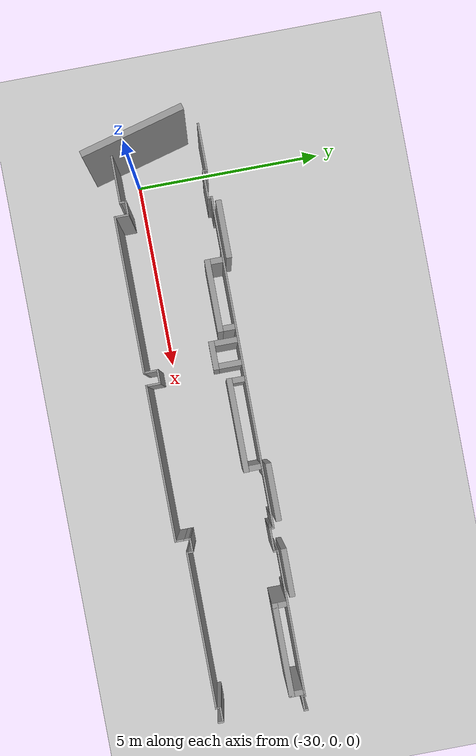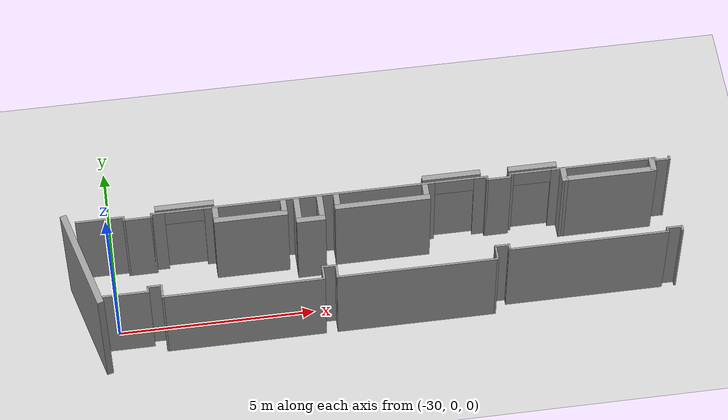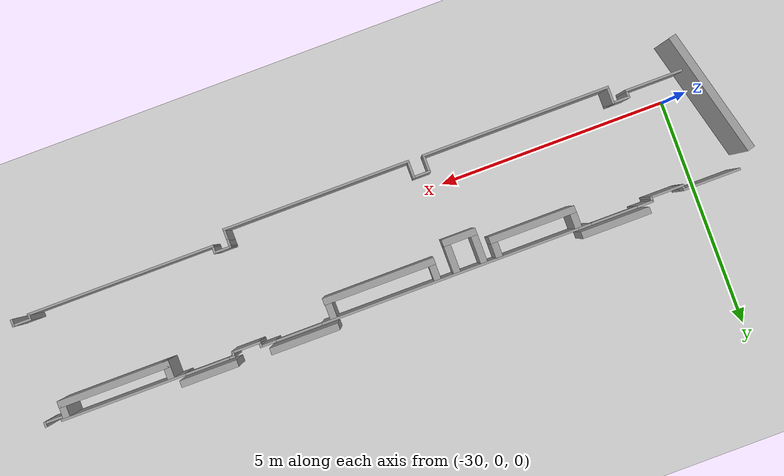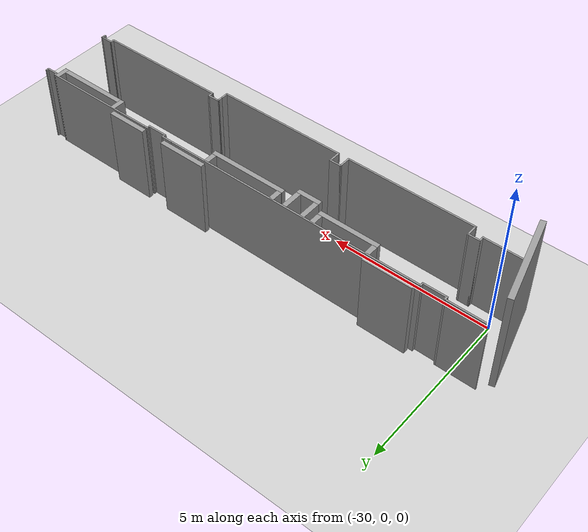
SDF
<sdf version="1.7">
 <world name="default">
  <model name="ground_plane">
   <static>1</static>
   <link name="link">
    <collision name="collision">
     <geometry><plane><normal>0 0 1</normal><size>100 100</size></plane></geometry>
     <surface><friction><ode><mu>100</mu><mu2>50</mu2></ode></friction></surface>
    </collision>
    <visual name="visual">
     <cast_shadows>0</cast_shadows>
     <geometry><plane><normal>0 0 1</normal><size>100 100</size></plane></geometry>
     <material>
      <script><uri>file://media/materials/scripts/gazebo.material</uri><name>Gazebo/Grey</name></script>
     </material>
    </visual>
   </link>
  </model>
  <model name="bot_world.world">
   <pose>-14.544 2.59256 0 0 -0 0</pose>
   <link name="Wall_122">
    <collision name="Wall_122_Collision">
     <geometry><box><size>0.159317 0.05 2.5</size></box></geometry>
     <pose>0 0 1.25 0 -0 0</pose>
    </collision>
    <visual name="Wall_122_Visual">
     <pose>0 0 1.25 0 -0 0</pose>
     <geometry><box><size>0.159317 0.05 2.5</size></box></geometry>
     <material>
      <script><uri>file://media/materials/scripts/gazebo.material</uri><name>Gazebo/Grey</name></script>
      <ambient>1 1 1 1</ambient>
     </material>
     <meta><layer>0</layer></meta>
    </visual>
    <pose>-1.14097 -2.9715 0 0 -0 1.57635</pose>
   </link>
   <link name="Wall_123">
    <collision name="Wall_123_Collision">
     <geometry><box><size>0.42 0.05 2.5</size></box></geometry>
     <pose>0 0 1.25 0 -0 0</pose>
    </collision>
    <visual name="Wall_123_Visual">
     <pose>0 0 1.25 0 -0 0</pose>
     <geometry><box><size>0.42 0.05 2.5</size></box></geometry>
     <material>
      <script><uri>file://media/materials/scripts/gazebo.material</uri><name>Gazebo/Grey</name></script>
      <ambient>1 1 1 1</ambient>
     </material>
     <meta><layer>0</layer></meta>
    </visual>
    <pose>-1.32567 -2.91717 0 0 -0 3.14159</pose>
   </link>
   <link name="Wall_124">
    <collision name="Wall_124_Collision">
     <geometry><box><size>0.15685 0.05 2.5</size></box></geometry>
     <pose>0 0 1.25 0 -0 0</pose>
    </collision>
    <visual name="Wall_124_Visual">
     <pose>0 0 1.25 0 -0 0</pose>
     <geometry><box><size>0.15685 0.05 2.5</size></box></geometry>
     <material>
      <script><uri>file://media/materials/scripts/gazebo.material</uri><name>Gazebo/Grey</name></script>
      <ambient>1 1 1 1</ambient>
     </material>
     <meta><layer>0</layer></meta>
    </visual>
    <pose>-1.51097 -2.97059 0 0 -0 -1.56515</pose>
   </link>
   <link name="Wall_125">
    <collision name="Wall_125_Collision">
     <geometry><box><size>4.08 0.05 2.5</size></box></geometry>
     <pose>0 0 1.25 0 -0 0</pose>
    </collision>
    <visual name="Wall_125_Visual">
     <pose>0 0 1.25 0 -0 0</pose>
     <geometry><box><size>4.08 0.05 2.5</size></box></geometry>
     <material>
      <script><uri>file://media/materials/scripts/gazebo.material</uri><name>Gazebo/Grey</name></script>
      <ambient>1 1 1 1</ambient>
     </material>
     <meta><layer>0</layer></meta>
    </visual>
    <pose>-3.52567 -3.02493 0 0 -0 3.14159</pose>
   </link>
   <link name="Wall_127">
    <collision name="Wall_127_Collision">
     <geometry><box><size>0.189791 0.05 2.5</size></box></geometry>
     <pose>0 0 1.25 0 -0 0</pose>
    </collision>
    <visual name="Wall_127_Visual">
     <pose>0 0 1.25 0 -0 0</pose>
     <geometry><box><size>0.189791 0.05 2.5</size></box></geometry>
     <material>
      <script><uri>file://media/materials/scripts/gazebo.material</uri><name>Gazebo/Grey</name></script>
      <ambient>1 1 1 1</ambient>
     </material>
     <meta><layer>0</layer></meta>
    </visual>
    <pose>-5.54044 -2.95432 0 0 -0 1.56758</pose>
   </link>
   <link name="Wall_128">
    <collision name="Wall_128_Collision">
     <geometry><box><size>0.39 0.05 2.5</size></box></geometry>
     <pose>0 0 1.25 0 -0 0</pose>
    </collision>
    <visual name="Wall_128_Visual">
     <pose>0 0 1.25 0 -0 0</pose>
     <geometry><box><size>0.39 0.05 2.5</size></box></geometry>
     <material>
      <script><uri>file://media/materials/scripts/gazebo.material</uri><name>Gazebo/Grey</name></script>
      <ambient>1 1 1 1</ambient>
     </material>
     <meta><layer>0</layer></meta>
    </visual>
    <pose>-5.71022 -2.88462 0 0 -0 3.14159</pose>
   </link>
   <link name="Wall_129">
    <collision name="Wall_129_Collision">
     <geometry><box><size>0.188127 0.05 2.5</size></box></geometry>
     <pose>0 0 1.25 0 -0 0</pose>
    </collision>
    <visual name="Wall_129_Visual">
     <pose>0 0 1.25 0 -0 0</pose>
     <geometry><box><size>0.188127 0.05 2.5</size></box></geometry>
     <material>
      <script><uri>file://media/materials/scripts/gazebo.material</uri><name>Gazebo/Grey</name></script>
      <ambient>1 1 1 1</ambient>
     </material>
     <meta><layer>0</layer></meta>
    </visual>
    <pose>-5.88004 -2.95398 0 0 -0 -1.56823</pose>
   </link>
   <link name="Wall_130">
    <collision name="Wall_130_Collision">
     <geometry><box><size>0.29 0.05 2.5</size></box></geometry>
     <pose>0 0 1.25 0 -0 0</pose>
    </collision>
    <visual name="Wall_130_Visual">
     <pose>0 0 1.25 0 -0 0</pose>
     <geometry><box><size>0.29 0.05 2.5</size></box></geometry>
     <material>
      <script><uri>file://media/materials/scripts/gazebo.material</uri><name>Gazebo/Grey</name></script>
      <ambient>1 1 1 1</ambient>
     </material>
     <meta><layer>0</layer></meta>
    </visual>
    <pose>-5.87986 -3.14334 0 0 -0 -1.5708</pose>
   </link>
   <link name="Wall_131">
    <collision name="Wall_131_Collision">
     <geometry><box><size>4.03 0 2.5</size></box></geometry>
     <pose>0 0 1.25 0 -0 0</pose>
    </collision>
    <visual name="Wall_131_Visual">
     <pose>0 0 1.25 0 -0 0</pose>
     <geometry><box><size>4.03 0 2.5</size></box></geometry>
     <material>
      <script><uri>file://media/materials/scripts/gazebo.material</uri><name>Gazebo/Grey</name></script>
      <ambient>1 1 1 1</ambient>
     </material>
     <meta><layer>0</layer></meta>
    </visual>
    <pose>-7.89476 -3.26309 0 0 -0 3.14147</pose>
   </link>
   <link name="Wall_133">
    <collision name="Wall_133_Collision">
     <geometry><box><size>4.08 0.05 2.5</size></box></geometry>
     <pose>0 0 1.25 0 -0 0</pose>
    </collision>
    <visual name="Wall_133_Visual">
     <pose>0 0 1.25 0 -0 0</pose>
     <geometry><box><size>4.08 0.05 2.5</size></box></geometry>
     <material>
      <script><uri>file://media/materials/scripts/gazebo.material</uri><name>Gazebo/Grey</name></script>
      <ambient>1 1 1 1</ambient>
     </material>
     <meta><layer>0</layer></meta>
    </visual>
    <pose>-7.89476 -3.26309 0 0 -0 3.14147</pose>
   </link>
   <link name="Wall_135">
    <collision name="Wall_135_Collision">
     <geometry><box><size>0.399503 0.05 2.5</size></box></geometry>
     <pose>0 0 1.25 0 -0 0</pose>
    </collision>
    <visual name="Wall_135_Visual">
     <pose>0 0 1.25 0 -0 0</pose>
     <geometry><box><size>0.399503 0.05 2.5</size></box></geometry>
     <material>
      <script><uri>file://media/materials/scripts/gazebo.material</uri><name>Gazebo/Grey</name></script>
      <ambient>1 1 1 1</ambient>
     </material>
     <meta><layer>0</layer></meta>
    </visual>
    <pose>-9.90967 -3.08784 0 0 -0 1.5708</pose>
   </link>
   <link name="Wall_136">
    <collision name="Wall_136_Collision">
     <geometry><box><size>0.39 0.05 2.5</size></box></geometry>
     <pose>0 0 1.25 0 -0 0</pose>
    </collision>
    <visual name="Wall_136_Visual">
     <pose>0 0 1.25 0 -0 0</pose>
     <geometry><box><size>0.39 0.05 2.5</size></box></geometry>
     <material>
      <script><uri>file://media/materials/scripts/gazebo.material</uri><name>Gazebo/Grey</name></script>
      <ambient>1 1 1 1</ambient>
     </material>
     <meta><layer>0</layer></meta>
    </visual>
    <pose>-10.0797 -2.91284 0 0 -0 3.14159</pose>
   </link>
   <link name="Wall_137">
    <collision name="Wall_137_Collision">
     <geometry><box><size>0.4 0.05 2.5</size></box></geometry>
     <pose>0 0 1.25 0 -0 0</pose>
    </collision>
    <visual name="Wall_137_Visual">
     <pose>0 0 1.25 0 -0 0</pose>
     <geometry><box><size>0.4 0.05 2.5</size></box></geometry>
     <material>
      <script><uri>file://media/materials/scripts/gazebo.material</uri><name>Gazebo/Grey</name></script>
      <ambient>1 1 1 1</ambient>
     </material>
     <meta><layer>0</layer></meta>
    </visual>
    <pose>-10.2497 -3.08784 0 0 -0 -1.5708</pose>
   </link>
   <link name="Wall_138">
    <collision name="Wall_138_Collision">
     <geometry><box><size>4.08 0.05 2.5</size></box></geometry>
     <pose>0 0 1.25 0 -0 0</pose>
    </collision>
    <visual name="Wall_138_Visual">
     <pose>0 0 1.25 0 -0 0</pose>
     <geometry><box><size>4.08 0.05 2.5</size></box></geometry>
     <material>
      <script><uri>file://media/materials/scripts/gazebo.material</uri><name>Gazebo/Grey</name></script>
      <ambient>1 1 1 1</ambient>
     </material>
     <meta><layer>0</layer></meta>
    </visual>
    <pose>-12.2647 -3.26284 0 0 -0 3.14159</pose>
   </link>
   <link name="Wall_140">
    <collision name="Wall_140_Collision">
     <geometry><box><size>0.39 0.05 2.5</size></box></geometry>
     <pose>0 0 1.25 0 -0 0</pose>
    </collision>
    <visual name="Wall_140_Visual">
     <pose>0 0 1.25 0 -0 0</pose>
     <geometry><box><size>0.39 0.05 2.5</size></box></geometry>
     <material>
      <script><uri>file://media/materials/scripts/gazebo.material</uri><name>Gazebo/Grey</name></script>
      <ambient>1 1 1 1</ambient>
     </material>
     <meta><layer>0</layer></meta>
    </visual>
    <pose>-14.2797 -3.09284 0 0 -0 1.5708</pose>
   </link>
   <link name="Wall_141">
    <collision name="Wall_141_Collision">
     <geometry><box><size>0.39 0.05 2.5</size></box></geometry>
     <pose>0 0 1.25 0 -0 0</pose>
    </collision>
    <visual name="Wall_141_Visual">
     <pose>0 0 1.25 0 -0 0</pose>
     <geometry><box><size>0.39 0.05 2.5</size></box></geometry>
     <material>
      <script><uri>file://media/materials/scripts/gazebo.material</uri><name>Gazebo/Grey</name></script>
      <ambient>1 1 1 1</ambient>
     </material>
     <meta><layer>0</layer></meta>
    </visual>
    <pose>-14.4497 -2.92284 0 0 -0 3.14159</pose>
   </link>
   <link name="Wall_143">
    <collision name="Wall_143_Collision">
     <geometry><box><size>0.19 0.05 2.5</size></box></geometry>
     <pose>0 0 1.25 0 -0 0</pose>
    </collision>
    <visual name="Wall_143_Visual">
     <pose>0 0 1.25 0 -0 0</pose>
     <geometry><box><size>0.19 0.05 2.5</size></box></geometry>
     <material>
      <script><uri>file://media/materials/scripts/gazebo.material</uri><name>Gazebo/Grey</name></script>
      <ambient>1 1 1 1</ambient>
     </material>
     <meta><layer>0</layer></meta>
    </visual>
    <pose>-14.6197 -2.99284 0 0 -0 -1.5708</pose>
   </link>
   <link name="Wall_144">
    <collision name="Wall_144_Collision">
     <geometry><box><size>1.25 0.05 2.5</size></box></geometry>
     <pose>0 0 1.25 0 -0 0</pose>
    </collision>
    <visual name="Wall_144_Visual">
     <pose>0 0 1.25 0 -0 0</pose>
     <geometry><box><size>1.25 0.05 2.5</size></box></geometry>
     <material>
      <script><uri>file://media/materials/scripts/gazebo.material</uri><name>Gazebo/Grey</name></script>
      <ambient>1 1 1 1</ambient>
     </material>
     <meta><layer>0</layer></meta>
    </visual>
    <pose>-15.2197 -3.06284 0 0 -0 3.14159</pose>
   </link>
   <link name="Wall_146">
    <collision name="Wall_146_Collision">
     <geometry><box><size>0.42 0.15 2.5</size></box></geometry>
     <pose>0 0 1.25 0 -0 0</pose>
    </collision>
    <visual name="Wall_146_Visual">
     <pose>0 0 1.25 0 -0 0</pose>
     <geometry><box><size>0.42 0.15 2.5</size></box></geometry>
     <material>
      <script><uri>file://media/materials/scripts/gazebo.material</uri><name>Gazebo/Grey</name></script>
      <ambient>1 1 1 1</ambient>
     </material>
     <meta><layer>0</layer></meta>
    </visual>
    <pose>-3.80107 -0.936792 0 0 -0 -1.5708</pose>
   </link>
   <link name="Wall_147">
    <collision name="Wall_147_Collision">
     <geometry><box><size>2.44162 0.15 2.5</size></box></geometry>
     <pose>0 0 1.25 0 -0 0</pose>
    </collision>
    <visual name="Wall_147_Visual">
     <pose>0 0 1.25 0 -0 0</pose>
     <geometry><box><size>2.44162 0.15 2.5</size></box></geometry>
     <material>
      <script><uri>file://media/materials/scripts/gazebo.material</uri><name>Gazebo/Grey</name></script>
      <ambient>1 1 1 1</ambient>
     </material>
     <meta><layer>0</layer></meta>
    </visual>
    <pose>-2.65422 -1.07154 0 0 -0 0.000218</pose>
   </link>
   <link name="Wall_148">
    <collision name="Wall_148_Collision">
     <geometry><box><size>0.42 0.15 2.5</size></box></geometry>
     <pose>0 0 1.25 0 -0 0</pose>
    </collision>
    <visual name="Wall_148_Visual">
     <pose>0 0 1.25 0 -0 0</pose>
     <geometry><box><size>0.42 0.15 2.5</size></box></geometry>
     <material>
      <script><uri>file://media/materials/scripts/gazebo.material</uri><name>Gazebo/Grey</name></script>
      <ambient>1 1 1 1</ambient>
     </material>
     <meta><layer>0</layer></meta>
    </visual>
    <pose>-1.51023 -0.934476 0 0 -0 1.5708</pose>
   </link>
   <link name="Wall_153">
    <collision name="Wall_153_Collision">
     <geometry><box><size>2.44 0.15 2.5</size></box></geometry>
     <pose>0 0 1.25 0 -0 0</pose>
    </collision>
    <visual name="Wall_153_Visual">
     <pose>0 0 1.25 0 -0 0</pose>
     <geometry><box><size>2.44 0.15 2.5</size></box></geometry>
     <material>
      <script><uri>file://media/materials/scripts/gazebo.material</uri><name>Gazebo/Grey</name></script>
      <ambient>1 1 1 1</ambient>
     </material>
     <meta><layer>0</layer></meta>
    </visual>
    <pose>-8.49434 -1.15782 0 0 -0 0</pose>
   </link>
   <link name="Wall_155">
    <collision name="Wall_155_Collision">
     <geometry><box><size>1.88 0.15 2.5</size></box></geometry>
     <pose>0 0 1.25 0 -0 0</pose>
    </collision>
    <visual name="Wall_155_Visual">
     <pose>0 0 1.25 0 -0 0</pose>
     <geometry><box><size>1.88 0.15 2.5</size></box></geometry>
     <material>
      <script><uri>file://media/materials/scripts/gazebo.material</uri><name>Gazebo/Grey</name></script>
      <ambient>1 1 1 1</ambient>
     </material>
     <meta><layer>0</layer></meta>
    </visual>
    <pose>-11.852 -1.1527 0 0 -0 0</pose>
   </link>
   <link name="Wall_157">
    <collision name="Wall_157_Collision">
     <geometry><box><size>0.74 0.15 2.5</size></box></geometry>
     <pose>0 0 1.25 0 -0 0</pose>
    </collision>
    <visual name="Wall_157_Visual">
     <pose>0 0 1.25 0 -0 0</pose>
     <geometry><box><size>0.74 0.15 2.5</size></box></geometry>
     <material>
      <script><uri>file://media/materials/scripts/gazebo.material</uri><name>Gazebo/Grey</name></script>
      <ambient>1 1 1 1</ambient>
     </material>
     <meta><layer>0</layer></meta>
    </visual>
    <pose>-10.3561 -1.43327 0 0 -0 0</pose>
   </link>
   <link name="Wall_159">
    <collision name="Wall_159_Collision">
     <geometry><box><size>0.6 0.15 2.5</size></box></geometry>
     <pose>0 0 1.25 0 -0 0</pose>
    </collision>
    <visual name="Wall_159_Visual">
     <pose>0 0 1.25 0 -0 0</pose>
     <geometry><box><size>0.6 0.15 2.5</size></box></geometry>
     <material>
      <script><uri>file://media/materials/scripts/gazebo.material</uri><name>Gazebo/Grey</name></script>
      <ambient>1 1 1 1</ambient>
     </material>
     <meta><layer>0</layer></meta>
    </visual>
    <pose>-10.6528 -1.06038 0 0 -0 -1.5708</pose>
   </link>
   <link name="Wall_161">
    <collision name="Wall_161_Collision">
     <geometry><box><size>0.34 0.15 2.5</size></box></geometry>
     <pose>0 0 1.25 0 -0 0</pose>
    </collision>
    <visual name="Wall_161_Visual">
     <pose>0 0 1.25 0 -0 0</pose>
     <geometry><box><size>0.34 0.15 2.5</size></box></geometry>
     <material>
      <script><uri>file://media/materials/scripts/gazebo.material</uri><name>Gazebo/Grey</name></script>
      <ambient>1 1 1 1</ambient>
     </material>
     <meta><layer>0</layer></meta>
    </visual>
    <pose>-12.7201 -0.915227 0 0 -0 -1.5708</pose>
   </link>
   <link name="Wall_163">
    <collision name="Wall_163_Collision">
     <geometry><box><size>0.34 0.15 2.5</size></box></geometry>
     <pose>0 0 1.25 0 -0 0</pose>
    </collision>
    <visual name="Wall_163_Visual">
     <pose>0 0 1.25 0 -0 0</pose>
     <geometry><box><size>0.34 0.15 2.5</size></box></geometry>
     <material>
      <script><uri>file://media/materials/scripts/gazebo.material</uri><name>Gazebo/Grey</name></script>
      <ambient>1 1 1 1</ambient>
     </material>
     <meta><layer>0</layer></meta>
    </visual>
    <pose>-7.36079 -0.926538 0 0 -0 -1.5708</pose>
   </link>
   <link name="Wall_165">
    <collision name="Wall_165_Collision">
     <geometry><box><size>0.6 0.15 2.5</size></box></geometry>
     <pose>0 0 1.25 0 -0 0</pose>
    </collision>
    <visual name="Wall_165_Visual">
     <pose>0 0 1.25 0 -0 0</pose>
     <geometry><box><size>0.6 0.15 2.5</size></box></geometry>
     <material>
      <script><uri>file://media/materials/scripts/gazebo.material</uri><name>Gazebo/Grey</name></script>
      <ambient>1 1 1 1</ambient>
     </material>
     <meta><layer>0</layer></meta>
    </visual>
    <pose>-10.0621 -1.06367 0 0 -0 -1.5708</pose>
   </link>
   <link name="Wall_167">
    <collision name="Wall_167_Collision">
     <geometry><box><size>0.34 0.15 2.5</size></box></geometry>
     <pose>0 0 1.25 0 -0 0</pose>
    </collision>
    <visual name="Wall_167_Visual">
     <pose>0 0 1.25 0 -0 0</pose>
     <geometry><box><size>0.34 0.15 2.5</size></box></geometry>
     <material>
      <script><uri>file://media/materials/scripts/gazebo.material</uri><name>Gazebo/Grey</name></script>
      <ambient>1 1 1 1</ambient>
     </material>
     <meta><layer>0</layer></meta>
    </visual>
    <pose>-10.9881 -0.924091 0 0 -0 -1.5708</pose>
   </link>
   <link name="Wall_169">
    <collision name="Wall_169_Collision">
     <geometry><box><size>0.34 0.15 2.5</size></box></geometry>
     <pose>0 0 1.25 0 -0 0</pose>
    </collision>
    <visual name="Wall_169_Visual">
     <pose>0 0 1.25 0 -0 0</pose>
     <geometry><box><size>0.34 0.15 2.5</size></box></geometry>
     <material>
      <script><uri>file://media/materials/scripts/gazebo.material</uri><name>Gazebo/Grey</name></script>
      <ambient>1 1 1 1</ambient>
     </material>
     <meta><layer>0</layer></meta>
    </visual>
    <pose>-9.63479 -0.920496 0 0 -0 -1.5708</pose>
   </link>
   <link name="Wall_52">
    <collision name="Wall_52_Collision">
     <geometry><box><size>0.118067 0.05 2.5</size></box></geometry>
     <pose>0 0 1.25 0 -0 0</pose>
    </collision>
    <visual name="Wall_52_Visual">
     <pose>0 0 1.25 0 -0 0</pose>
     <geometry><box><size>0.118067 0.05 2.5</size></box></geometry>
     <material>
      <script><uri>file://media/materials/scripts/gazebo.material</uri><name>Gazebo/Grey</name></script>
      <ambient>1 1 1 1</ambient>
     </material>
     <meta><layer>0</layer></meta>
    </visual>
    <pose>-1.05236 -0.780541 0 0 -0 -1.56348</pose>
   </link>
   <link name="Wall_53">
    <collision name="Wall_53_Collision">
     <geometry><box><size>0.409 0.05 2.5</size></box></geometry>
     <pose>0 0 1.25 0 -0 0</pose>
    </collision>
    <visual name="Wall_53_Visual">
     <pose>0 0 1.25 0 -0 0</pose>
     <geometry><box><size>0.409 0.05 2.5</size></box></geometry>
     <material>
      <script><uri>file://media/materials/scripts/gazebo.material</uri><name>Gazebo/Grey</name></script>
      <ambient>1 1 1 1</ambient>
     </material>
     <meta><layer>0</layer></meta>
    </visual>
    <pose>-1.23162 -0.814348 0 0 -0 3.14159</pose>
   </link>
   <link name="Wall_54">
    <collision name="Wall_54_Collision">
     <geometry><box><size>0.12 0.05 2.5</size></box></geometry>
     <pose>0 0 1.25 0 -0 0</pose>
    </collision>
    <visual name="Wall_54_Visual">
     <pose>0 0 1.25 0 -0 0</pose>
     <geometry><box><size>0.12 0.05 2.5</size></box></geometry>
     <material>
      <script><uri>file://media/materials/scripts/gazebo.material</uri><name>Gazebo/Grey</name></script>
      <ambient>1 1 1 1</ambient>
     </material>
     <meta><layer>0</layer></meta>
    </visual>
    <pose>-1.41112 -0.779348 0 0 -0 1.5708</pose>
   </link>
   <link name="Wall_55">
    <pose>-3.29089 -0.744595 0 0 -0 -3.14146</pose>
    <visual name="Wall_55_Visual_0">
     <pose>-0.544894 0 1.25 0 -0 0</pose>
     <geometry><box><size>2.72021 0.05 2.5</size></box></geometry>
     <material>
      <script><uri>file://media/materials/scripts/gazebo.material</uri><name>Gazebo/Grey</name></script>
      <ambient>1 1 1 1</ambient>
     </material>
     <meta><layer>0</layer></meta>
    </visual>
    <collision name="Wall_55_Collision_0">
     <geometry><box><size>2.72021 0.05 2.5</size></box></geometry>
     <pose>-0.544894 0 1.25 0 -0 0</pose>
    </collision>
    <visual name="Wall_55_Visual_1">
     <pose>1.84011 0 1.25 0 -0 0</pose>
     <geometry><box><size>0.129787 0.05 2.5</size></box></geometry>
     <material>
      <script><uri>file://media/materials/scripts/gazebo.material</uri><name>Gazebo/Grey</name></script>
      <ambient>1 1 1 1</ambient>
     </material>
     <meta><layer>0</layer></meta>
    </visual>
    <collision name="Wall_55_Collision_1">
     <geometry><box><size>0.129787 0.05 2.5</size></box></geometry>
     <pose>1.84011 0 1.25 0 -0 0</pose>
    </collision>
    <visual name="Wall_55_Visual_2">
     <pose>1.29521 0 2.25 0 -0 0</pose>
     <geometry><box><size>0.96 0.05 0.5</size></box></geometry>
     <material>
      <script><uri>file://media/materials/scripts/gazebo.material</uri><name>Gazebo/Grey</name></script>
      <ambient>1 1 1 1</ambient>
     </material>
     <meta><layer>0</layer></meta>
    </visual>
    <collision name="Wall_55_Collision_2">
     <geometry><box><size>0.96 0.05 0.5</size></box></geometry>
     <pose>1.29521 0 2.25 0 -0 0</pose>
    </collision>
   </link>
   <link name="Wall_57">
    <collision name="Wall_57_Collision">
     <geometry><box><size>0.14 0.05 2.5</size></box></geometry>
     <pose>0 0 1.25 0 -0 0</pose>
    </collision>
    <visual name="Wall_57_Visual">
     <pose>0 0 1.25 0 -0 0</pose>
     <geometry><box><size>0.14 0.05 2.5</size></box></geometry>
     <material>
      <script><uri>file://media/materials/scripts/gazebo.material</uri><name>Gazebo/Grey</name></script>
      <ambient>1 1 1 1</ambient>
     </material>
     <meta><layer>0</layer></meta>
    </visual>
    <pose>-5.17067 -0.789841 0 0 -0 -1.5708</pose>
   </link>
   <link name="Wall_58">
    <collision name="Wall_58_Collision">
     <geometry><box><size>0.64 0.05 2.5</size></box></geometry>
     <pose>0 0 1.25 0 -0 0</pose>
    </collision>
    <visual name="Wall_58_Visual">
     <pose>0 0 1.25 0 -0 0</pose>
     <geometry><box><size>0.64 0.05 2.5</size></box></geometry>
     <material>
      <script><uri>file://media/materials/scripts/gazebo.material</uri><name>Gazebo/Grey</name></script>
      <ambient>1 1 1 1</ambient>
     </material>
     <meta><layer>0</layer></meta>
    </visual>
    <pose>-5.46567 -0.834841 0 0 -0 3.14159</pose>
   </link>
   <link name="Wall_59">
    <collision name="Wall_59_Collision">
     <geometry><box><size>0.14 0.05 2.5</size></box></geometry>
     <pose>0 0 1.25 0 -0 0</pose>
    </collision>
    <visual name="Wall_59_Visual">
     <pose>0 0 1.25 0 -0 0</pose>
     <geometry><box><size>0.14 0.05 2.5</size></box></geometry>
     <material>
      <script><uri>file://media/materials/scripts/gazebo.material</uri><name>Gazebo/Grey</name></script>
      <ambient>1 1 1 1</ambient>
     </material>
     <meta><layer>0</layer></meta>
    </visual>
    <pose>-5.76067 -0.789841 0 0 -0 1.5708</pose>
   </link>
   <link name="Wall_60">
    <pose>-10.0457 -0.744841 0 0 -0 3.14159</pose>
    <visual name="Wall_60_Visual_0">
     <pose>-4.13046 0 1.25 0 -0 0</pose>
     <geometry><box><size>0.359084 0.05 2.5</size></box></geometry>
     <material>
      <script><uri>file://media/materials/scripts/gazebo.material</uri><name>Gazebo/Grey</name></script>
      <ambient>1 1 1 1</ambient>
     </material>
     <meta><layer>0</layer></meta>
    </visual>
    <collision name="Wall_60_Collision_0">
     <geometry><box><size>0.359084 0.05 2.5</size></box></geometry>
     <pose>-4.13046 0 1.25 0 -0 0</pose>
    </collision>
    <visual name="Wall_60_Visual_1">
     <pose>0.000135 0 1.25 0 -0 0</pose>
     <geometry><box><size>5.9021 0.05 2.5</size></box></geometry>
     <material>
      <script><uri>file://media/materials/scripts/gazebo.material</uri><name>Gazebo/Grey</name></script>
      <ambient>1 1 1 1</ambient>
     </material>
     <meta><layer>0</layer></meta>
    </visual>
    <collision name="Wall_60_Collision_1">
     <geometry><box><size>5.9021 0.05 2.5</size></box></geometry>
     <pose>0.000135 0 1.25 0 -0 0</pose>
    </collision>
    <visual name="Wall_60_Visual_2">
     <pose>4.13059 0 1.25 0 -0 0</pose>
     <geometry><box><size>0.358813 0.05 2.5</size></box></geometry>
     <material>
      <script><uri>file://media/materials/scripts/gazebo.material</uri><name>Gazebo/Grey</name></script>
      <ambient>1 1 1 1</ambient>
     </material>
     <meta><layer>0</layer></meta>
    </visual>
    <collision name="Wall_60_Collision_2">
     <geometry><box><size>0.358813 0.05 2.5</size></box></geometry>
     <pose>4.13059 0 1.25 0 -0 0</pose>
    </collision>
    <visual name="Wall_60_Visual_3">
     <pose>-3.45092 0 2.25 0 -0 0</pose>
     <geometry><box><size>1 0.05 0.5</size></box></geometry>
     <material>
      <script><uri>file://media/materials/scripts/gazebo.material</uri><name>Gazebo/Grey</name></script>
      <ambient>1 1 1 1</ambient>
     </material>
     <meta><layer>0</layer></meta>
    </visual>
    <collision name="Wall_60_Collision_3">
     <geometry><box><size>1 0.05 0.5</size></box></geometry>
     <pose>-3.45092 0 2.25 0 -0 0</pose>
    </collision>
    <visual name="Wall_60_Visual_4">
     <pose>3.45119 0 2.25 0 -0 0</pose>
     <geometry><box><size>1 0.05 0.5</size></box></geometry>
     <material>
      <script><uri>file://media/materials/scripts/gazebo.material</uri><name>Gazebo/Grey</name></script>
      <ambient>1 1 1 1</ambient>
     </material>
     <meta><layer>0</layer></meta>
    </visual>
    <collision name="Wall_60_Collision_4">
     <geometry><box><size>1 0.05 0.5</size></box></geometry>
     <pose>3.45119 0 2.25 0 -0 0</pose>
    </collision>
   </link>
   <link name="Wall_64">
    <collision name="Wall_64_Collision">
     <geometry><box><size>1.25 0.15 2.5</size></box></geometry>
     <pose>0 0 1.25 0 -0 0</pose>
    </collision>
    <visual name="Wall_64_Visual">
     <pose>0 0 1.25 0 -0 0</pose>
     <geometry><box><size>1.25 0.15 2.5</size></box></geometry>
     <material>
      <script><uri>file://media/materials/scripts/gazebo.material</uri><name>Gazebo/Grey</name></script>
      <ambient>1 1 1 1</ambient>
     </material>
     <meta><layer>0</layer></meta>
    </visual>
    <pose>-4.56894 -0.591819 0 0 -0 0</pose>
   </link>
   <link name="Wall_66">
    <collision name="Wall_66_Collision">
     <geometry><box><size>0.14 0.05 2.5</size></box></geometry>
     <pose>0 0 1.25 0 -0 0</pose>
    </collision>
    <visual name="Wall_66_Visual">
     <pose>0 0 1.25 0 -0 0</pose>
     <geometry><box><size>0.14 0.05 2.5</size></box></geometry>
     <material>
      <script><uri>file://media/materials/scripts/gazebo.material</uri><name>Gazebo/Grey</name></script>
      <ambient>1 1 1 1</ambient>
     </material>
     <meta><layer>0</layer></meta>
    </visual>
    <pose>-14.3307 -0.789841 0 0 -0 -1.5708</pose>
   </link>
   <link name="Wall_67">
    <collision name="Wall_67_Collision">
     <geometry><box><size>0.75 0.05 2.5</size></box></geometry>
     <pose>0 0 1.25 0 -0 0</pose>
    </collision>
    <visual name="Wall_67_Visual">
     <pose>0 0 1.25 0 -0 0</pose>
     <geometry><box><size>0.75 0.05 2.5</size></box></geometry>
     <material>
      <script><uri>file://media/materials/scripts/gazebo.material</uri><name>Gazebo/Grey</name></script>
      <ambient>1 1 1 1</ambient>
     </material>
     <meta><layer>0</layer></meta>
    </visual>
    <pose>-14.6807 -0.834841 0 0 -0 3.14159</pose>
   </link>
   <link name="Wall_68">
    <collision name="Wall_68_Collision">
     <geometry><box><size>0.14 0.05 2.5</size></box></geometry>
     <pose>0 0 1.25 0 -0 0</pose>
    </collision>
    <visual name="Wall_68_Visual">
     <pose>0 0 1.25 0 -0 0</pose>
     <geometry><box><size>0.14 0.05 2.5</size></box></geometry>
     <material>
      <script><uri>file://media/materials/scripts/gazebo.material</uri><name>Gazebo/Grey</name></script>
      <ambient>1 1 1 1</ambient>
     </material>
     <meta><layer>0</layer></meta>
    </visual>
    <pose>-15.0307 -0.789841 0 0 -0 1.5708</pose>
   </link>
   <link name="Wall_72">
    <collision name="Wall_72_Collision">
     <geometry><box><size>1.5 0.15 2.5</size></box></geometry>
     <pose>0 0 1.25 0 -0 0</pose>
    </collision>
    <visual name="Wall_72_Visual">
     <pose>0 0 1.25 0 -0 0</pose>
     <geometry><box><size>1.5 0.15 2.5</size></box></geometry>
     <material>
      <script><uri>file://media/materials/scripts/gazebo.material</uri><name>Gazebo/Grey</name></script>
      <ambient>1 1 1 1</ambient>
     </material>
     <meta><layer>0</layer></meta>
    </visual>
    <pose>-6.65608 -0.577066 0 0 -0 0</pose>
   </link>
   <link name="Wall_74">
    <collision name="Wall_74_Collision">
     <geometry><box><size>1.5 0.15 2.5</size></box></geometry>
     <pose>0 0 1.25 0 -0 0</pose>
    </collision>
    <visual name="Wall_74_Visual">
     <pose>0 0 1.25 0 -0 0</pose>
     <geometry><box><size>1.5 0.15 2.5</size></box></geometry>
     <material>
      <script><uri>file://media/materials/scripts/gazebo.material</uri><name>Gazebo/Grey</name></script>
      <ambient>1 1 1 1</ambient>
     </material>
     <meta><layer>0</layer></meta>
    </visual>
    <pose>-13.4812 -0.592642 0 0 -0 0</pose>
   </link>
   <link name="Wall_76">
    <collision name="Wall_76_Collision">
     <geometry><box><size>1.25 0.05 2.5</size></box></geometry>
     <pose>0 0 1.25 0 -0 0</pose>
    </collision>
    <visual name="Wall_76_Visual">
     <pose>0 0 1.25 0 -0 0</pose>
     <geometry><box><size>1.25 0.05 2.5</size></box></geometry>
     <material>
      <script><uri>file://media/materials/scripts/gazebo.material</uri><name>Gazebo/Grey</name></script>
      <ambient>1 1 1 1</ambient>
     </material>
     <meta><layer>0</layer></meta>
    </visual>
    <pose>-15.6307 -0.744841 0 0 -0 3.14159</pose>
   </link>
   <static>1</static>
  </model>
  <model name="unit_box">
   <pose>-30.6976 0.179082 1.65131 -2e-06 1e-06 0.259284</pose>
   <link name="link">
    <inertial>
     <mass>1</mass>
     <inertia>
      <ixx>0.166667</ixx>
      <ixy>0</ixy>
      <ixz>0</ixz>
      <iyy>0.166667</iyy>
      <iyz>0</iyz>
      <izz>0.166667</izz>
     </inertia>
    </inertial>
    <collision name="collision"><geometry><box><size>0.168509 2.78657 3.30262</size></box></geometry></collision>
    <visual name="visual">
     <geometry><box><size>0.168509 2.78657 3.30262</size></box></geometry>
     <material>
      <script><name>Gazebo/Grey</name><uri>file://media/materials/scripts/gazebo.material</uri></script>
     </material>
    </visual>
   </link>
  </model>
 </world>
</sdf>
